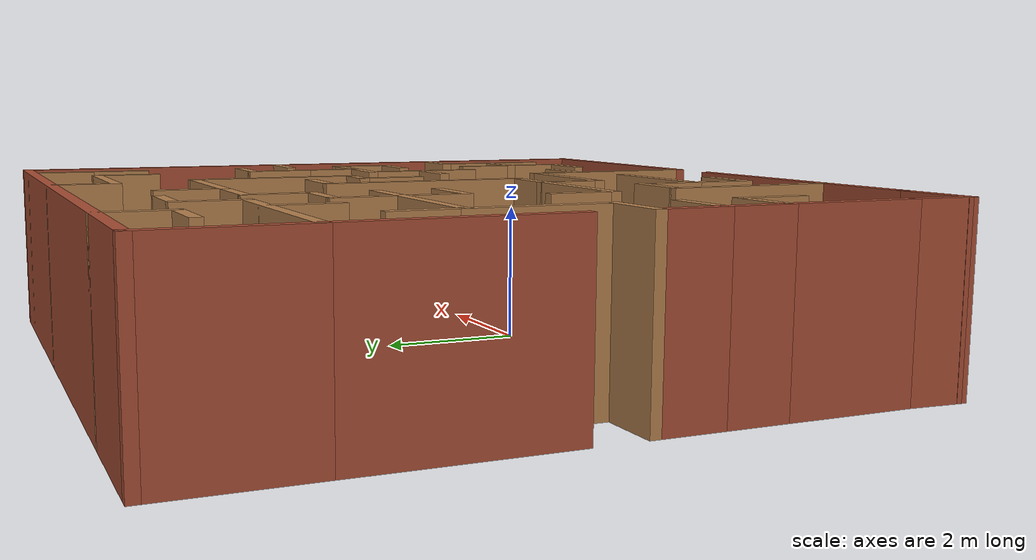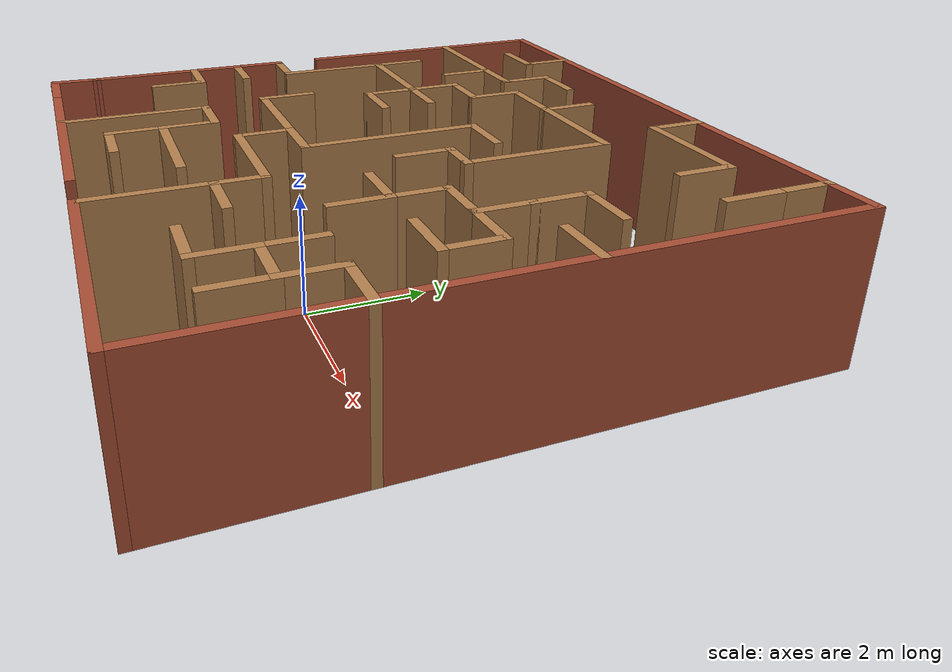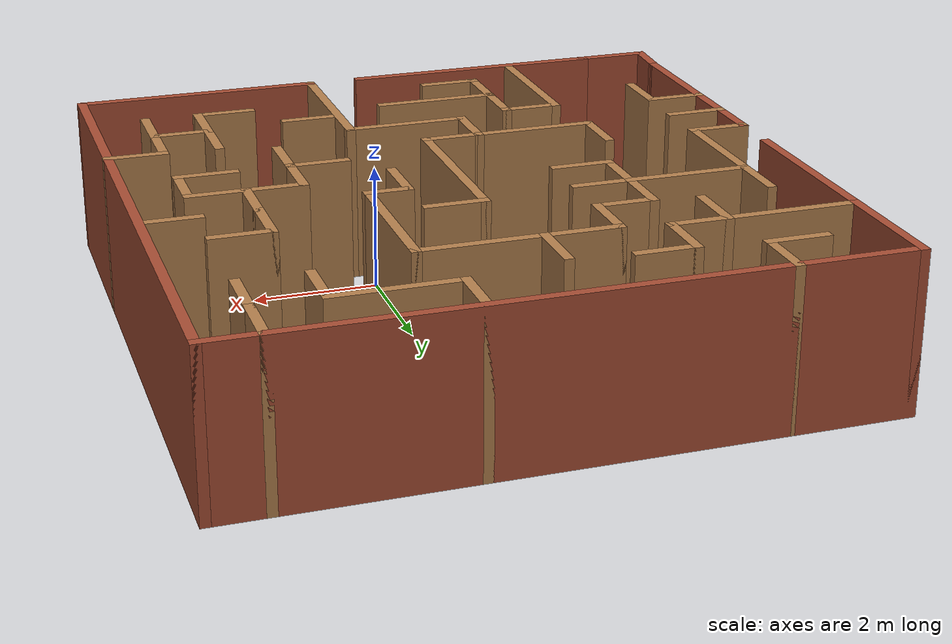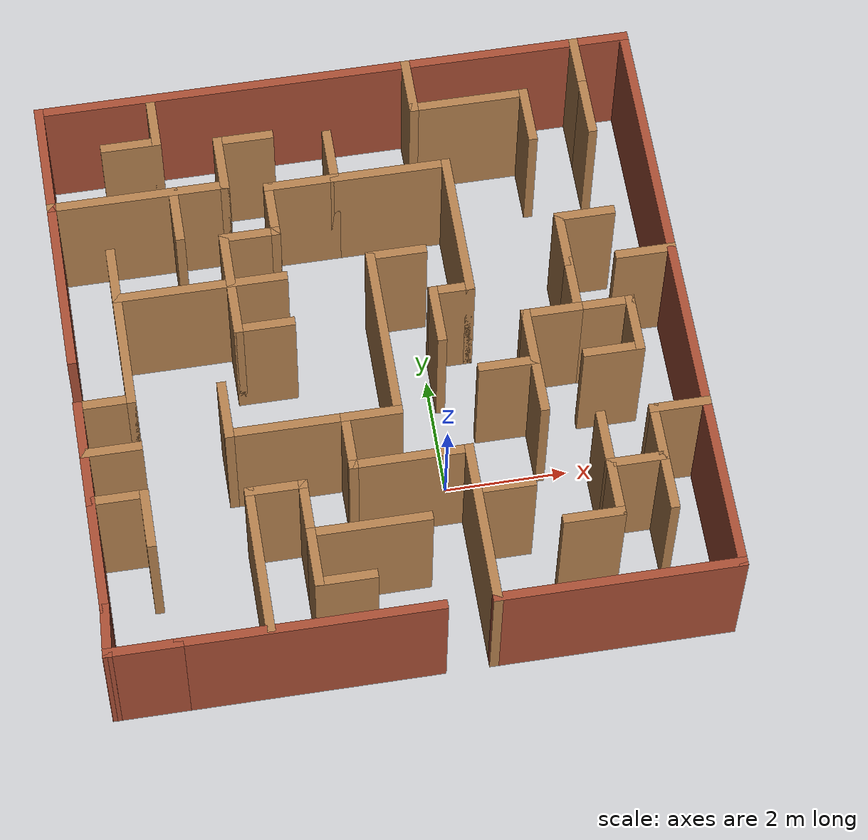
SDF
<?xml version='1.0'?>
<sdf version='1.6'>
  <model name='maze_2'>
    <pose frame=''>-0.861124 1.77194 0 0 -0 0</pose>
    <link name='Wall_10'>
      <collision name='Wall_10_Collision'>
        <geometry>
          <box>
            <size>2 0.15 2.5</size>
          </box>
        </geometry>
        <pose frame=''>0 0 1.25 0 -0 0</pose>
      </collision>
      <visual name='Wall_10_Visual'>
        <pose frame=''>0 0 1.25 0 -0 0</pose>
        <geometry>
          <box>
            <size>2 0.15 2.5</size>
          </box>
        </geometry>
        <material>
          <script>
            <uri>file://media/materials/scripts/gazebo.material</uri>
            <name>Gazebo/Wood</name>
          </script>
          <ambient>1 1 1 1</ambient>
        </material>
        <meta>
          <layer>0</layer>
        </meta>
      </visual>
      <pose frame=''>0.177411 -2.32259 0 0 -0 3.14159</pose>
    </link>
    <link name='Wall_101'>
      <collision name='Wall_101_Collision'>
        <geometry>
          <box>
            <size>1 0.15 2.5</size>
          </box>
        </geometry>
        <pose frame=''>0 0 1.25 0 -0 0</pose>
      </collision>
      <visual name='Wall_101_Visual'>
        <pose frame=''>0 0 1.25 0 -0 0</pose>
        <geometry>
          <box>
            <size>1 0.15 2.5</size>
          </box>
        </geometry>
        <material>
          <script>
            <uri>file://media/materials/scripts/gazebo.material</uri>
            <name>Gazebo/Bricks</name>
          </script>
          <ambient>1 1 1 1</ambient>
        </material>
        <meta>
          <layer>0</layer>
        </meta>
      </visual>
      <pose frame=''>-4.89759 -1.89759 0 0 -0 -1.5708</pose>
    </link>
    <link name='Wall_102'>
      <collision name='Wall_102_Collision'>
        <geometry>
          <box>
            <size>1 0.15 2.5</size>
          </box>
        </geometry>
        <pose frame=''>0 0 1.25 0 -0 0</pose>
      </collision>
      <visual name='Wall_102_Visual'>
        <pose frame=''>0 0 1.25 0 -0 0</pose>
        <geometry>
          <box>
            <size>1 0.15 2.5</size>
          </box>
        </geometry>
        <material>
          <script>
            <uri>file://media/materials/scripts/gazebo.material</uri>
            <name>Gazebo/Wood</name>
          </script>
          <ambient>1 1 1 1</ambient>
        </material>
        <meta>
          <layer>0</layer>
        </meta>
      </visual>
      <pose frame=''>-4.47259 -2.32259 0 0 -0 0</pose>
    </link>
    <link name='Wall_103'>
      <collision name='Wall_103_Collision'>
        <geometry>
          <box>
            <size>1 0.15 2.5</size>
          </box>
        </geometry>
        <pose frame=''>0 0 1.25 0 -0 0</pose>
      </collision>
      <visual name='Wall_103_Visual'>
        <pose frame=''>0 0 1.25 0 -0 0</pose>
        <geometry>
          <box>
            <size>1 0.15 2.5</size>
          </box>
        </geometry>
        <material>
          <script>
            <uri>file://media/materials/scripts/gazebo.material</uri>
            <name>Gazebo/Wood</name>
          </script>
          <ambient>1 1 1 1</ambient>
        </material>
        <meta>
          <layer>0</layer>
        </meta>
      </visual>
      <pose frame=''>-4.04759 -2.74759 0 0 -0 -1.5708</pose>
    </link>
    <link name='Wall_105'>
      <collision name='Wall_105_Collision'>
        <geometry>
          <box>
            <size>2 0.15 2.5</size>
          </box>
        </geometry>
        <pose frame=''>0 0 1.25 0 -0 0</pose>
      </collision>
      <visual name='Wall_105_Visual'>
        <pose frame=''>0 0 1.25 0 -0 0</pose>
        <geometry>
          <box>
            <size>2 0.15 2.5</size>
          </box>
        </geometry>
        <material>
          <script>
            <uri>file://media/materials/scripts/gazebo.material</uri>
            <name>Gazebo/Bricks</name>
          </script>
          <ambient>1 1 1 1</ambient>
        </material>
        <meta>
          <layer>0</layer>
        </meta>
      </visual>
      <pose frame=''>-4.89759 -3.24759 0 0 -0 -1.5708</pose>
    </link>
    <link name='Wall_11'>
      <collision name='Wall_11_Collision'>
        <geometry>
          <box>
            <size>1 0.15 2.5</size>
          </box>
        </geometry>
        <pose frame=''>0 0 1.25 0 -0 0</pose>
      </collision>
      <visual name='Wall_11_Visual'>
        <pose frame=''>0 0 1.25 0 -0 0</pose>
        <geometry>
          <box>
            <size>1 0.15 2.5</size>
          </box>
        </geometry>
        <material>
          <script>
            <uri>file://media/materials/scripts/gazebo.material</uri>
            <name>Gazebo/Wood</name>
          </script>
          <ambient>1 1 1 1</ambient>
        </material>
        <meta>
          <layer>0</layer>
        </meta>
      </visual>
      <pose frame=''>-0.747589 -1.89759 0 0 -0 1.5708</pose>
    </link>
    <link name='Wall_114'>
      <collision name='Wall_114_Collision'>
        <geometry>
          <box>
            <size>4.25 0.15 2.5</size>
          </box>
        </geometry>
        <pose frame=''>0 0 1.25 0 -0 0</pose>
      </collision>
      <visual name='Wall_114_Visual'>
        <pose frame=''>0 0 1.25 0 -0 0</pose>
        <geometry>
          <box>
            <size>4.25 0.15 2.5</size>
          </box>
        </geometry>
        <material>
          <script>
            <uri>file://media/materials/scripts/gazebo.material</uri>
            <name>Gazebo/Bricks</name>
          </script>
          <ambient>1 1 1 1</ambient>
        </material>
        <meta>
          <layer>0</layer>
        </meta>
      </visual>
      <pose frame=''>-1.79759 -4.92259 0 0 -0 3.14159</pose>
    </link>
    <link name='Wall_119'>
      <collision name='Wall_119_Collision'>
        <geometry>
          <box>
            <size>1.25 0.15 2.5</size>
          </box>
        </geometry>
        <pose frame=''>0 0 1.25 0 -0 0</pose>
      </collision>
      <visual name='Wall_119_Visual'>
        <pose frame=''>0 0 1.25 0 -0 0</pose>
        <geometry>
          <box>
            <size>1.25 0.15 2.5</size>
          </box>
        </geometry>
        <material>
          <script>
            <uri>file://media/materials/scripts/gazebo.material</uri>
            <name>Gazebo/Bricks</name>
          </script>
          <ambient>1 1 1 1</ambient>
        </material>
        <meta>
          <layer>0</layer>
        </meta>
      </visual>
      <pose frame=''>-4.39759 -4.92259 0 0 -0 3.14159</pose>
    </link>
    <link name='Wall_12'>
      <collision name='Wall_12_Collision'>
        <geometry>
          <box>
            <size>1 0.15 2.5</size>
          </box>
        </geometry>
        <pose frame=''>0 0 1.25 0 -0 0</pose>
      </collision>
      <visual name='Wall_12_Visual'>
        <pose frame=''>0 0 1.25 0 -0 0</pose>
        <geometry>
          <box>
            <size>1 0.15 2.5</size>
          </box>
        </geometry>
        <material>
          <script>
            <uri>file://media/materials/scripts/gazebo.material</uri>
            <name>Gazebo/Wood</name>
          </script>
          <ambient>1 1 1 1</ambient>
        </material>
        <meta>
          <layer>0</layer>
        </meta>
      </visual>
      <pose frame=''>-0.322589 -1.47259 0 0 -0 0</pose>
    </link>
    <link name='Wall_121'>
      <collision name='Wall_121_Collision'>
        <geometry>
          <box>
            <size>0.901665 0.15 2.5</size>
          </box>
        </geometry>
        <pose frame=''>0 0 1.25 0 -0 0</pose>
      </collision>
      <visual name='Wall_121_Visual'>
        <pose frame=''>0 0 1.25 0 -0 0</pose>
        <geometry>
          <box>
            <size>0.901665 0.15 2.5</size>
          </box>
        </geometry>
        <material>
          <script>
            <uri>file://media/materials/scripts/gazebo.material</uri>
            <name>Gazebo/Bricks</name>
          </script>
          <ambient>1 1 1 1</ambient>
        </material>
        <meta>
          <layer>0</layer>
        </meta>
      </visual>
      <pose frame=''>-4.92259 -4.54759 0 0 -0 -1.63736</pose>
    </link>
    <link name='Wall_13'>
      <collision name='Wall_13_Collision'>
        <geometry>
          <box>
            <size>3 0.15 2.5</size>
          </box>
        </geometry>
        <pose frame=''>0 0 1.25 0 -0 0</pose>
      </collision>
      <visual name='Wall_13_Visual'>
        <pose frame=''>0 0 1.25 0 -0 0</pose>
        <geometry>
          <box>
            <size>3 0.15 2.5</size>
          </box>
        </geometry>
        <material>
          <script>
            <uri>file://media/materials/scripts/gazebo.material</uri>
            <name>Gazebo/Wood</name>
          </script>
          <ambient>1 1 1 1</ambient>
        </material>
        <meta>
          <layer>0</layer>
        </meta>
      </visual>
      <pose frame=''>0.102411 -0.047589 0 0 -0 1.5708</pose>
    </link>
    <link name='Wall_14'>
      <collision name='Wall_14_Collision'>
        <geometry>
          <box>
            <size>1 0.15 2.5</size>
          </box>
        </geometry>
        <pose frame=''>0 0 1.25 0 -0 0</pose>
      </collision>
      <visual name='Wall_14_Visual'>
        <pose frame=''>0 0 1.25 0 -0 0</pose>
        <geometry>
          <box>
            <size>1 0.15 2.5</size>
          </box>
        </geometry>
        <material>
          <script>
            <uri>file://media/materials/scripts/gazebo.material</uri>
            <name>Gazebo/Wood</name>
          </script>
          <ambient>1 1 1 1</ambient>
        </material>
        <meta>
          <layer>0</layer>
        </meta>
      </visual>
      <pose frame=''>0.527411 1.37741 0 0 -0 0</pose>
    </link>
    <link name='Wall_16'>
      <collision name='Wall_16_Collision'>
        <geometry>
          <box>
            <size>2 0.15 2.5</size>
          </box>
        </geometry>
        <pose frame=''>0 0 1.25 0 -0 0</pose>
      </collision>
      <visual name='Wall_16_Visual'>
        <pose frame=''>0 0 1.25 0 -0 0</pose>
        <geometry>
          <box>
            <size>2 0.15 2.5</size>
          </box>
        </geometry>
        <material>
          <script>
            <uri>file://media/materials/scripts/gazebo.material</uri>
            <name>Gazebo/Wood</name>
          </script>
          <ambient>1 1 1 1</ambient>
        </material>
        <meta>
          <layer>0</layer>
        </meta>
      </visual>
      <pose frame=''>-1.67259 -1.47259 0 0 -0 3.14159</pose>
    </link>
    <link name='Wall_17'>
      <collision name='Wall_17_Collision'>
        <geometry>
          <box>
            <size>1 0.15 2.5</size>
          </box>
        </geometry>
        <pose frame=''>0 0 1.25 0 -0 0</pose>
      </collision>
      <visual name='Wall_17_Visual'>
        <pose frame=''>0 0 1.25 0 -0 0</pose>
        <geometry>
          <box>
            <size>1 0.15 2.5</size>
          </box>
        </geometry>
        <material>
          <script>
            <uri>file://media/materials/scripts/gazebo.material</uri>
            <name>Gazebo/Wood</name>
          </script>
          <ambient>1 1 1 1</ambient>
        </material>
        <meta>
          <layer>0</layer>
        </meta>
      </visual>
      <pose frame=''>-2.59759 -1.04759 0 0 -0 1.5708</pose>
    </link>
    <link name='Wall_192'>
      <collision name='Wall_192_Collision'>
        <geometry>
          <box>
            <size>2.5 0.15 2.5</size>
          </box>
        </geometry>
        <pose frame=''>0 0 1.25 0 -0 0</pose>
      </collision>
      <visual name='Wall_192_Visual'>
        <pose frame=''>0 0 1.25 0 -0 0</pose>
        <geometry>
          <box>
            <size>2.5 0.15 2.5</size>
          </box>
        </geometry>
        <material>
          <script>
            <uri>file://media/materials/scripts/gazebo.material</uri>
            <name>Gazebo/Wood</name>
          </script>
          <ambient>1 1 1 1</ambient>
        </material>
        <meta>
          <layer>0</layer>
        </meta>
      </visual>
      <pose frame=''>-2.42673 -3.71326 0 0 -0 1.5708</pose>
    </link>
    <link name='Wall_193'>
      <collision name='Wall_193_Collision'>
        <geometry>
          <box>
            <size>1 0.15 2.5</size>
          </box>
        </geometry>
        <pose frame=''>0 0 1.25 0 -0 0</pose>
      </collision>
      <visual name='Wall_193_Visual'>
        <pose frame=''>0 0 1.25 0 -0 0</pose>
        <geometry>
          <box>
            <size>1 0.15 2.5</size>
          </box>
        </geometry>
        <material>
          <script>
            <uri>file://media/materials/scripts/gazebo.material</uri>
            <name>Gazebo/Wood</name>
          </script>
          <ambient>1 1 1 1</ambient>
        </material>
        <meta>
          <layer>0</layer>
        </meta>
      </visual>
      <pose frame=''>-2.00173 -2.53826 0 0 -0 0</pose>
    </link>
    <link name='Wall_194'>
      <collision name='Wall_194_Collision'>
        <geometry>
          <box>
            <size>1 0.15 2.5</size>
          </box>
        </geometry>
        <pose frame=''>0 0 1.25 0 -0 0</pose>
      </collision>
      <visual name='Wall_194_Visual'>
        <pose frame=''>0 0 1.25 0 -0 0</pose>
        <geometry>
          <box>
            <size>1 0.15 2.5</size>
          </box>
        </geometry>
        <material>
          <script>
            <uri>file://media/materials/scripts/gazebo.material</uri>
            <name>Gazebo/Wood</name>
          </script>
          <ambient>1 1 1 1</ambient>
        </material>
        <meta>
          <layer>0</layer>
        </meta>
      </visual>
      <pose frame=''>-1.57673 -2.96326 0 0 -0 -1.5708</pose>
    </link>
    <link name='Wall_195'>
      <collision name='Wall_195_Collision'>
        <geometry>
          <box>
            <size>2 0.15 2.5</size>
          </box>
        </geometry>
        <pose frame=''>0 0 1.25 0 -0 0</pose>
      </collision>
      <visual name='Wall_195_Visual'>
        <pose frame=''>0 0 1.25 0 -0 0</pose>
        <geometry>
          <box>
            <size>2 0.15 2.5</size>
          </box>
        </geometry>
        <material>
          <script>
            <uri>file://media/materials/scripts/gazebo.material</uri>
            <name>Gazebo/Wood</name>
          </script>
          <ambient>1 1 1 1</ambient>
        </material>
        <meta>
          <layer>0</layer>
        </meta>
      </visual>
      <pose frame=''>-0.651728 -3.38826 0 0 -0 0</pose>
    </link>
    <link name='Wall_197'>
      <collision name='Wall_197_Collision'>
        <geometry>
          <box>
            <size>1 0.15 2.5</size>
          </box>
        </geometry>
        <pose frame=''>0 0 1.25 0 -0 0</pose>
      </collision>
      <visual name='Wall_197_Visual'>
        <pose frame=''>0 0 1.25 0 -0 0</pose>
        <geometry>
          <box>
            <size>1 0.15 2.5</size>
          </box>
        </geometry>
        <material>
          <script>
            <uri>file://media/materials/scripts/gazebo.material</uri>
            <name>Gazebo/Wood</name>
          </script>
          <ambient>1 1 1 1</ambient>
        </material>
        <meta>
          <layer>0</layer>
        </meta>
      </visual>
      <pose frame=''>-1.57673 -3.81326 0 0 -0 -1.5708</pose>
    </link>
    <link name='Wall_198'>
      <collision name='Wall_198_Collision'>
        <geometry>
          <box>
            <size>1 0.15 2.5</size>
          </box>
        </geometry>
        <pose frame=''>0 0 1.25 0 -0 0</pose>
      </collision>
      <visual name='Wall_198_Visual'>
        <pose frame=''>0 0 1.25 0 -0 0</pose>
        <geometry>
          <box>
            <size>1 0.15 2.5</size>
          </box>
        </geometry>
        <material>
          <script>
            <uri>file://media/materials/scripts/gazebo.material</uri>
            <name>Gazebo/Wood</name>
          </script>
          <ambient>1 1 1 1</ambient>
        </material>
        <meta>
          <layer>0</layer>
        </meta>
      </visual>
      <pose frame=''>-1.15173 -4.23826 0 0 -0 0</pose>
    </link>
    <link name='Wall_20'>
      <collision name='Wall_20_Collision'>
        <geometry>
          <box>
            <size>1 0.15 2.5</size>
          </box>
        </geometry>
        <pose frame=''>0 0 1.25 0 -0 0</pose>
      </collision>
      <visual name='Wall_20_Visual'>
        <pose frame=''>0 0 1.25 0 -0 0</pose>
        <geometry>
          <box>
            <size>1 0.15 2.5</size>
          </box>
        </geometry>
        <material>
          <script>
            <uri>file://media/materials/scripts/gazebo.material</uri>
            <name>Gazebo/Wood</name>
          </script>
          <ambient>1 1 1 1</ambient>
        </material>
        <meta>
          <layer>0</layer>
        </meta>
      </visual>
      <pose frame=''>1.54191 -3.05359 0 0 -0 0</pose>
    </link>
    <link name='Wall_23'>
      <collision name='Wall_23_Collision'>
        <geometry>
          <box>
            <size>1 0.15 2.5</size>
          </box>
        </geometry>
        <pose frame=''>0 0 1.25 0 -0 0</pose>
      </collision>
      <visual name='Wall_23_Visual'>
        <pose frame=''>0 0 1.25 0 -0 0</pose>
        <geometry>
          <box>
            <size>1 0.15 2.5</size>
          </box>
        </geometry>
        <material>
          <script>
            <uri>file://media/materials/scripts/gazebo.material</uri>
            <name>Gazebo/Wood</name>
          </script>
          <ambient>1 1 1 1</ambient>
        </material>
        <meta>
          <layer>0</layer>
        </meta>
      </visual>
      <pose frame=''>4.52741 -2.07259 0 0 -0 3.14159</pose>
    </link>
    <link name='Wall_24'>
      <collision name='Wall_24_Collision'>
        <geometry>
          <box>
            <size>1 0.15 2.5</size>
          </box>
        </geometry>
        <pose frame=''>0 0 1.25 0 -0 0</pose>
      </collision>
      <visual name='Wall_24_Visual'>
        <pose frame=''>0 0 1.25 0 -0 0</pose>
        <geometry>
          <box>
            <size>1 0.15 2.5</size>
          </box>
        </geometry>
        <material>
          <script>
            <uri>file://media/materials/scripts/gazebo.material</uri>
            <name>Gazebo/Wood</name>
          </script>
          <ambient>1 1 1 1</ambient>
        </material>
        <meta>
          <layer>0</layer>
        </meta>
      </visual>
      <pose frame=''>4.10241 -2.49759 0 0 -0 -1.5708</pose>
    </link>
    <link name='Wall_25'>
      <collision name='Wall_25_Collision'>
        <geometry>
          <box>
            <size>1 0.15 2.5</size>
          </box>
        </geometry>
        <pose frame=''>0 0 1.25 0 -0 0</pose>
      </collision>
      <visual name='Wall_25_Visual'>
        <pose frame=''>0 0 1.25 0 -0 0</pose>
        <geometry>
          <box>
            <size>1 0.15 2.5</size>
          </box>
        </geometry>
        <material>
          <script>
            <uri>file://media/materials/scripts/gazebo.material</uri>
            <name>Gazebo/Wood</name>
          </script>
          <ambient>1 1 1 1</ambient>
        </material>
        <meta>
          <layer>0</layer>
        </meta>
      </visual>
      <pose frame=''>3.67741 -2.92259 0 0 -0 3.14159</pose>
    </link>
    <link name='Wall_26'>
      <collision name='Wall_26_Collision'>
        <geometry>
          <box>
            <size>1 0.15 2.5</size>
          </box>
        </geometry>
        <pose frame=''>0 0 1.25 0 -0 0</pose>
      </collision>
      <visual name='Wall_26_Visual'>
        <pose frame=''>0 0 1.25 0 -0 0</pose>
        <geometry>
          <box>
            <size>1 0.15 2.5</size>
          </box>
        </geometry>
        <material>
          <script>
            <uri>file://media/materials/scripts/gazebo.material</uri>
            <name>Gazebo/Wood</name>
          </script>
          <ambient>1 1 1 1</ambient>
        </material>
        <meta>
          <layer>0</layer>
        </meta>
      </visual>
      <pose frame=''>3.25241 -3.34759 0 0 -0 -1.5708</pose>
    </link>
    <link name='Wall_27'>
      <collision name='Wall_27_Collision'>
        <geometry>
          <box>
            <size>1 0.15 2.5</size>
          </box>
        </geometry>
        <pose frame=''>0 0 1.25 0 -0 0</pose>
      </collision>
      <visual name='Wall_27_Visual'>
        <pose frame=''>0 0 1.25 0 -0 0</pose>
        <geometry>
          <box>
            <size>1 0.15 2.5</size>
          </box>
        </geometry>
        <material>
          <script>
            <uri>file://media/materials/scripts/gazebo.material</uri>
            <name>Gazebo/Wood</name>
          </script>
          <ambient>1 1 1 1</ambient>
        </material>
        <meta>
          <layer>0</layer>
        </meta>
      </visual>
      <pose frame=''>2.82741 -3.77259 0 0 -0 3.14159</pose>
    </link>
    <link name='Wall_29'>
      <collision name='Wall_29_Collision'>
        <geometry>
          <box>
            <size>1 0.15 2.5</size>
          </box>
        </geometry>
        <pose frame=''>0 0 1.25 0 -0 0</pose>
      </collision>
      <visual name='Wall_29_Visual'>
        <pose frame=''>0 0 1.25 0 -0 0</pose>
        <geometry>
          <box>
            <size>1 0.15 2.5</size>
          </box>
        </geometry>
        <material>
          <script>
            <uri>file://media/materials/scripts/gazebo.material</uri>
            <name>Gazebo/Wood</name>
          </script>
          <ambient>1 1 1 1</ambient>
        </material>
        <meta>
          <layer>0</layer>
        </meta>
      </visual>
      <pose frame=''>4.10241 -3.34759 0 0 -0 -1.5708</pose>
    </link>
    <link name='Wall_31'>
      <collision name='Wall_31_Collision'>
        <geometry>
          <box>
            <size>1 0.15 2.5</size>
          </box>
        </geometry>
        <pose frame=''>0 0 1.25 0 -0 0</pose>
      </collision>
      <visual name='Wall_31_Visual'>
        <pose frame=''>0 0 1.25 0 -0 0</pose>
        <geometry>
          <box>
            <size>1 0.15 2.5</size>
          </box>
        </geometry>
        <material>
          <script>
            <uri>file://media/materials/scripts/gazebo.material</uri>
            <name>Gazebo/Wood</name>
          </script>
          <ambient>1 1 1 1</ambient>
        </material>
        <meta>
          <layer>0</layer>
        </meta>
      </visual>
      <pose frame=''>3.25241 -2.49759 0 0 -0 1.5708</pose>
    </link>
    <link name='Wall_34'>
      <collision name='Wall_34_Collision'>
        <geometry>
          <box>
            <size>1 0.15 2.5</size>
          </box>
        </geometry>
        <pose frame=''>0 0 1.25 0 -0 0</pose>
      </collision>
      <visual name='Wall_34_Visual'>
        <pose frame=''>0 0 1.25 0 -0 0</pose>
        <geometry>
          <box>
            <size>1 0.15 2.5</size>
          </box>
        </geometry>
        <material>
          <script>
            <uri>file://media/materials/scripts/gazebo.material</uri>
            <name>Gazebo/Wood</name>
          </script>
          <ambient>1 1 1 1</ambient>
        </material>
        <meta>
          <layer>0</layer>
        </meta>
      </visual>
      <pose frame=''>4.52741 0.777411 0 0 -0 3.14159</pose>
    </link>
    <link name='Wall_36'>
      <collision name='Wall_36_Collision'>
        <geometry>
          <box>
            <size>1 0.15 2.5</size>
          </box>
        </geometry>
        <pose frame=''>0 0 1.25 0 -0 0</pose>
      </collision>
      <visual name='Wall_36_Visual'>
        <pose frame=''>0 0 1.25 0 -0 0</pose>
        <geometry>
          <box>
            <size>1 0.15 2.5</size>
          </box>
        </geometry>
        <material>
          <script>
            <uri>file://media/materials/scripts/gazebo.material</uri>
            <name>Gazebo/Wood</name>
          </script>
          <ambient>1 1 1 1</ambient>
        </material>
        <meta>
          <layer>0</layer>
        </meta>
      </visual>
      <pose frame=''>3.25241 1.20241 0 0 -0 1.5708</pose>
    </link>
    <link name='Wall_37'>
      <collision name='Wall_37_Collision'>
        <geometry>
          <box>
            <size>1 0.15 2.5</size>
          </box>
        </geometry>
        <pose frame=''>0 0 1.25 0 -0 0</pose>
      </collision>
      <visual name='Wall_37_Visual'>
        <pose frame=''>0 0 1.25 0 -0 0</pose>
        <geometry>
          <box>
            <size>1 0.15 2.5</size>
          </box>
        </geometry>
        <material>
          <script>
            <uri>file://media/materials/scripts/gazebo.material</uri>
            <name>Gazebo/Wood</name>
          </script>
          <ambient>1 1 1 1</ambient>
        </material>
        <meta>
          <layer>0</layer>
        </meta>
      </visual>
      <pose frame=''>3.67741 1.62741 0 0 -0 0</pose>
    </link>
    <link name='Wall_39'>
      <collision name='Wall_39_Collision'>
        <geometry>
          <box>
            <size>1 0.15 2.5</size>
          </box>
        </geometry>
        <pose frame=''>0 0 1.25 0 -0 0</pose>
      </collision>
      <visual name='Wall_39_Visual'>
        <pose frame=''>0 0 1.25 0 -0 0</pose>
        <geometry>
          <box>
            <size>1 0.15 2.5</size>
          </box>
        </geometry>
        <material>
          <script>
            <uri>file://media/materials/scripts/gazebo.material</uri>
            <name>Gazebo/Wood</name>
          </script>
          <ambient>1 1 1 1</ambient>
        </material>
        <meta>
          <layer>0</layer>
        </meta>
      </visual>
      <pose frame=''>3.25241 0.352411 0 0 -0 -1.5708</pose>
    </link>
    <link name='Wall_40'>
      <collision name='Wall_40_Collision'>
        <geometry>
          <box>
            <size>1 0.15 2.5</size>
          </box>
        </geometry>
        <pose frame=''>0 0 1.25 0 -0 0</pose>
      </collision>
      <visual name='Wall_40_Visual'>
        <pose frame=''>0 0 1.25 0 -0 0</pose>
        <geometry>
          <box>
            <size>1 0.15 2.5</size>
          </box>
        </geometry>
        <material>
          <script>
            <uri>file://media/materials/scripts/gazebo.material</uri>
            <name>Gazebo/Wood</name>
          </script>
          <ambient>1 1 1 1</ambient>
        </material>
        <meta>
          <layer>0</layer>
        </meta>
      </visual>
      <pose frame=''>2.82741 -0.072589 0 0 -0 3.14159</pose>
    </link>
    <link name='Wall_41'>
      <collision name='Wall_41_Collision'>
        <geometry>
          <box>
            <size>1 0.15 2.5</size>
          </box>
        </geometry>
        <pose frame=''>0 0 1.25 0 -0 0</pose>
      </collision>
      <visual name='Wall_41_Visual'>
        <pose frame=''>0 0 1.25 0 -0 0</pose>
        <geometry>
          <box>
            <size>1 0.15 2.5</size>
          </box>
        </geometry>
        <material>
          <script>
            <uri>file://media/materials/scripts/gazebo.material</uri>
            <name>Gazebo/Wood</name>
          </script>
          <ambient>1 1 1 1</ambient>
        </material>
        <meta>
          <layer>0</layer>
        </meta>
      </visual>
      <pose frame=''>2.40241 -0.497589 0 0 -0 -1.5708</pose>
    </link>
    <link name='Wall_42'>
      <collision name='Wall_42_Collision'>
        <geometry>
          <box>
            <size>1 0.15 2.5</size>
          </box>
        </geometry>
        <pose frame=''>0 0 1.25 0 -0 0</pose>
      </collision>
      <visual name='Wall_42_Visual'>
        <pose frame=''>0 0 1.25 0 -0 0</pose>
        <geometry>
          <box>
            <size>1 0.15 2.5</size>
          </box>
        </geometry>
        <material>
          <script>
            <uri>file://media/materials/scripts/gazebo.material</uri>
            <name>Gazebo/Wood</name>
          </script>
          <ambient>1 1 1 1</ambient>
        </material>
        <meta>
          <layer>0</layer>
        </meta>
      </visual>
      <pose frame=''>1.97741 -0.922589 0 0 -0 3.14159</pose>
    </link>
    <link name='Wall_44'>
      <collision name='Wall_44_Collision'>
        <geometry>
          <box>
            <size>1 0.15 2.5</size>
          </box>
        </geometry>
        <pose frame=''>0 0 1.25 0 -0 0</pose>
      </collision>
      <visual name='Wall_44_Visual'>
        <pose frame=''>0 0 1.25 0 -0 0</pose>
        <geometry>
          <box>
            <size>1 0.15 2.5</size>
          </box>
        </geometry>
        <material>
          <script>
            <uri>file://media/materials/scripts/gazebo.material</uri>
            <name>Gazebo/Wood</name>
          </script>
          <ambient>1 1 1 1</ambient>
        </material>
        <meta>
          <layer>0</layer>
        </meta>
      </visual>
      <pose frame=''>2.40241 -1.34759 0 0 -0 -1.5708</pose>
    </link>
    <link name='Wall_46'>
      <collision name='Wall_46_Collision'>
        <geometry>
          <box>
            <size>1 0.15 2.5</size>
          </box>
        </geometry>
        <pose frame=''>0 0 1.25 0 -0 0</pose>
      </collision>
      <visual name='Wall_46_Visual'>
        <pose frame=''>0 0 1.25 0 -0 0</pose>
        <geometry>
          <box>
            <size>1 0.15 2.5</size>
          </box>
        </geometry>
        <material>
          <script>
            <uri>file://media/materials/scripts/gazebo.material</uri>
            <name>Gazebo/Wood</name>
          </script>
          <ambient>1 1 1 1</ambient>
        </material>
        <meta>
          <layer>0</layer>
        </meta>
      </visual>
      <pose frame=''>3.67741 -0.072589 0 0 -0 0</pose>
    </link>
    <link name='Wall_47'>
      <collision name='Wall_47_Collision'>
        <geometry>
          <box>
            <size>1 0.15 2.5</size>
          </box>
        </geometry>
        <pose frame=''>0 0 1.25 0 -0 0</pose>
      </collision>
      <visual name='Wall_47_Visual'>
        <pose frame=''>0 0 1.25 0 -0 0</pose>
        <geometry>
          <box>
            <size>1 0.15 2.5</size>
          </box>
        </geometry>
        <material>
          <script>
            <uri>file://media/materials/scripts/gazebo.material</uri>
            <name>Gazebo/Wood</name>
          </script>
          <ambient>1 1 1 1</ambient>
        </material>
        <meta>
          <layer>0</layer>
        </meta>
      </visual>
      <pose frame=''>4.10241 -0.497589 0 0 -0 -1.5708</pose>
    </link>
    <link name='Wall_48'>
      <collision name='Wall_48_Collision'>
        <geometry>
          <box>
            <size>1 0.15 2.5</size>
          </box>
        </geometry>
        <pose frame=''>0 0 1.25 0 -0 0</pose>
      </collision>
      <visual name='Wall_48_Visual'>
        <pose frame=''>0 0 1.25 0 -0 0</pose>
        <geometry>
          <box>
            <size>1 0.15 2.5</size>
          </box>
        </geometry>
        <material>
          <script>
            <uri>file://media/materials/scripts/gazebo.material</uri>
            <name>Gazebo/Wood</name>
          </script>
          <ambient>1 1 1 1</ambient>
        </material>
        <meta>
          <layer>0</layer>
        </meta>
      </visual>
      <pose frame=''>3.67741 -0.922589 0 0 -0 3.14159</pose>
    </link>
    <link name='Wall_5'>
      <collision name='Wall_5_Collision'>
        <geometry>
          <box>
            <size>10 0.15 2.5</size>
          </box>
        </geometry>
        <pose frame=''>0 0 1.25 0 -0 0</pose>
      </collision>
      <visual name='Wall_5_Visual'>
        <pose frame=''>0 0 1.25 0 -0 0</pose>
        <geometry>
          <box>
            <size>10 0.15 2.5</size>
          </box>
        </geometry>
        <material>
          <script>
            <uri>file://media/materials/scripts/gazebo.material</uri>
            <name>Gazebo/Bricks</name>
          </script>
          <ambient>1 1 1 1</ambient>
        </material>
        <meta>
          <layer>0</layer>
        </meta>
      </visual>
      <pose frame=''>0.027411 4.92741 0 0 -0 0</pose>
    </link>
    <link name='Wall_51'>
      <collision name='Wall_51_Collision'>
        <geometry>
          <box>
            <size>1 0.15 2.5</size>
          </box>
        </geometry>
        <pose frame=''>0 0 1.25 0 -0 0</pose>
      </collision>
      <visual name='Wall_51_Visual'>
        <pose frame=''>0 0 1.25 0 -0 0</pose>
        <geometry>
          <box>
            <size>1 0.15 2.5</size>
          </box>
        </geometry>
        <material>
          <script>
            <uri>file://media/materials/scripts/gazebo.material</uri>
            <name>Gazebo/Wood</name>
          </script>
          <ambient>1 1 1 1</ambient>
        </material>
        <meta>
          <layer>0</layer>
        </meta>
      </visual>
      <pose frame=''>4.10241 4.50241 0 0 -0 -1.5708</pose>
    </link>
    <link name='Wall_54'>
      <collision name='Wall_54_Collision'>
        <geometry>
          <box>
            <size>1 0.15 2.5</size>
          </box>
        </geometry>
        <pose frame=''>0 0 1.25 0 -0 0</pose>
      </collision>
      <visual name='Wall_54_Visual'>
        <pose frame=''>0 0 1.25 0 -0 0</pose>
        <geometry>
          <box>
            <size>1 0.15 2.5</size>
          </box>
        </geometry>
        <material>
          <script>
            <uri>file://media/materials/scripts/gazebo.material</uri>
            <name>Gazebo/Wood</name>
          </script>
          <ambient>1 1 1 1</ambient>
        </material>
        <meta>
          <layer>0</layer>
        </meta>
      </visual>
      <pose frame=''>1.25241 4.50241 0 0 -0 -1.5708</pose>
    </link>
    <link name='Wall_55'>
      <collision name='Wall_55_Collision'>
        <geometry>
          <box>
            <size>2 0.15 2.5</size>
          </box>
        </geometry>
        <pose frame=''>0 0 1.25 0 -0 0</pose>
      </collision>
      <visual name='Wall_55_Visual'>
        <pose frame=''>0 0 1.25 0 -0 0</pose>
        <geometry>
          <box>
            <size>2 0.15 2.5</size>
          </box>
        </geometry>
        <material>
          <script>
            <uri>file://media/materials/scripts/gazebo.material</uri>
            <name>Gazebo/Wood</name>
          </script>
          <ambient>1 1 1 1</ambient>
        </material>
        <meta>
          <layer>0</layer>
        </meta>
      </visual>
      <pose frame=''>2.17741 4.07741 0 0 -0 0</pose>
    </link>
    <link name='Wall_56'>
      <collision name='Wall_56_Collision'>
        <geometry>
          <box>
            <size>1 0.15 2.5</size>
          </box>
        </geometry>
        <pose frame=''>0 0 1.25 0 -0 0</pose>
      </collision>
      <visual name='Wall_56_Visual'>
        <pose frame=''>0 0 1.25 0 -0 0</pose>
        <geometry>
          <box>
            <size>1 0.15 2.5</size>
          </box>
        </geometry>
        <material>
          <script>
            <uri>file://media/materials/scripts/gazebo.material</uri>
            <name>Gazebo/Wood</name>
          </script>
          <ambient>1 1 1 1</ambient>
        </material>
        <meta>
          <layer>0</layer>
        </meta>
      </visual>
      <pose frame=''>3.10241 3.65241 0 0 -0 -1.5708</pose>
    </link>
    <link name='Wall_58'>
      <collision name='Wall_58_Collision'>
        <geometry>
          <box>
            <size>1 0.15 2.5</size>
          </box>
        </geometry>
        <pose frame=''>0 0 1.25 0 -0 0</pose>
      </collision>
      <visual name='Wall_58_Visual'>
        <pose frame=''>0 0 1.25 0 -0 0</pose>
        <geometry>
          <box>
            <size>1 0.15 2.5</size>
          </box>
        </geometry>
        <material>
          <script>
            <uri>file://media/materials/scripts/gazebo.material</uri>
            <name>Gazebo/Wood</name>
          </script>
          <ambient>1 1 1 1</ambient>
        </material>
        <meta>
          <layer>0</layer>
        </meta>
      </visual>
      <pose frame=''>4.10241 3.65241 0 0 -0 -1.5708</pose>
    </link>
    <link name='Wall_61'>
      <collision name='Wall_61_Collision'>
        <geometry>
          <box>
            <size>1 0.15 2.5</size>
          </box>
        </geometry>
        <pose frame=''>0 0 1.25 0 -0 0</pose>
      </collision>
      <visual name='Wall_61_Visual'>
        <pose frame=''>0 0 1.25 0 -0 0</pose>
        <geometry>
          <box>
            <size>1 0.15 2.5</size>
          </box>
        </geometry>
        <material>
          <script>
            <uri>file://media/materials/scripts/gazebo.material</uri>
            <name>Gazebo/Wood</name>
          </script>
          <ambient>1 1 1 1</ambient>
        </material>
        <meta>
          <layer>0</layer>
        </meta>
      </visual>
      <pose frame=''>-3.04759 4.50241 0 0 -0 -1.5708</pose>
    </link>
    <link name='Wall_62'>
      <collision name='Wall_62_Collision'>
        <geometry>
          <box>
            <size>1 0.15 2.5</size>
          </box>
        </geometry>
        <pose frame=''>0 0 1.25 0 -0 0</pose>
      </collision>
      <visual name='Wall_62_Visual'>
        <pose frame=''>0 0 1.25 0 -0 0</pose>
        <geometry>
          <box>
            <size>1 0.15 2.5</size>
          </box>
        </geometry>
        <material>
          <script>
            <uri>file://media/materials/scripts/gazebo.material</uri>
            <name>Gazebo/Wood</name>
          </script>
          <ambient>1 1 1 1</ambient>
        </material>
        <meta>
          <layer>0</layer>
        </meta>
      </visual>
      <pose frame=''>-3.47259 4.07741 0 0 -0 3.14159</pose>
    </link>
    <link name='Wall_64'>
      <collision name='Wall_64_Collision'>
        <geometry>
          <box>
            <size>2 0.15 2.5</size>
          </box>
        </geometry>
        <pose frame=''>0 0 1.25 0 -0 0</pose>
      </collision>
      <visual name='Wall_64_Visual'>
        <pose frame=''>0 0 1.25 0 -0 0</pose>
        <geometry>
          <box>
            <size>2 0.15 2.5</size>
          </box>
        </geometry>
        <material>
          <script>
            <uri>file://media/materials/scripts/gazebo.material</uri>
            <name>Gazebo/Bricks</name>
          </script>
          <ambient>1 1 1 1</ambient>
        </material>
        <meta>
          <layer>0</layer>
        </meta>
      </visual>
      <pose frame=''>-4.89759 4.00241 0 0 -0 -1.5708</pose>
    </link>
    <link name='Wall_65'>
      <collision name='Wall_65_Collision'>
        <geometry>
          <box>
            <size>3 0.15 2.5</size>
          </box>
        </geometry>
        <pose frame=''>0 0 1.25 0 -0 0</pose>
      </collision>
      <visual name='Wall_65_Visual'>
        <pose frame=''>0 0 1.25 0 -0 0</pose>
        <geometry>
          <box>
            <size>3 0.15 2.5</size>
          </box>
        </geometry>
        <material>
          <script>
            <uri>file://media/materials/scripts/gazebo.material</uri>
            <name>Gazebo/Wood</name>
          </script>
          <ambient>1 1 1 1</ambient>
        </material>
        <meta>
          <layer>0</layer>
        </meta>
      </visual>
      <pose frame=''>-3.47259 3.07741 0 0 -0 0</pose>
    </link>
    <link name='Wall_66'>
      <collision name='Wall_66_Collision'>
        <geometry>
          <box>
            <size>1 0.15 2.5</size>
          </box>
        </geometry>
        <pose frame=''>0 0 1.25 0 -0 0</pose>
      </collision>
      <visual name='Wall_66_Visual'>
        <pose frame=''>0 0 1.25 0 -0 0</pose>
        <geometry>
          <box>
            <size>1 0.15 2.5</size>
          </box>
        </geometry>
        <material>
          <script>
            <uri>file://media/materials/scripts/gazebo.material</uri>
            <name>Gazebo/Wood</name>
          </script>
          <ambient>1 1 1 1</ambient>
        </material>
        <meta>
          <layer>0</layer>
        </meta>
      </visual>
      <pose frame=''>-2.04759 3.50241 0 0 -0 1.5708</pose>
    </link>
    <link name='Wall_67'>
      <collision name='Wall_67_Collision'>
        <geometry>
          <box>
            <size>1 0.15 2.5</size>
          </box>
        </geometry>
        <pose frame=''>0 0 1.25 0 -0 0</pose>
      </collision>
      <visual name='Wall_67_Visual'>
        <pose frame=''>0 0 1.25 0 -0 0</pose>
        <geometry>
          <box>
            <size>1 0.15 2.5</size>
          </box>
        </geometry>
        <material>
          <script>
            <uri>file://media/materials/scripts/gazebo.material</uri>
            <name>Gazebo/Wood</name>
          </script>
          <ambient>1 1 1 1</ambient>
        </material>
        <meta>
          <layer>0</layer>
        </meta>
      </visual>
      <pose frame=''>-1.62259 3.92741 0 0 -0 0</pose>
    </link>
    <link name='Wall_7'>
      <collision name='Wall_7_Collision'>
        <geometry>
          <box>
            <size>10 0.15 2.5</size>
          </box>
        </geometry>
        <pose frame=''>0 0 1.25 0 -0 0</pose>
      </collision>
      <visual name='Wall_7_Visual'>
        <pose frame=''>0 0 1.25 0 -0 0</pose>
        <geometry>
          <box>
            <size>10 0.15 2.5</size>
          </box>
        </geometry>
        <material>
          <script>
            <uri>file://media/materials/scripts/gazebo.material</uri>
            <name>Gazebo/Bricks</name>
          </script>
          <ambient>1 1 1 1</ambient>
        </material>
        <meta>
          <layer>0</layer>
        </meta>
      </visual>
      <pose frame=''>4.95241 0.002411 0 0 -0 -1.5708</pose>
    </link>
    <link name='Wall_70'>
      <collision name='Wall_70_Collision'>
        <geometry>
          <box>
            <size>1 0.15 2.5</size>
          </box>
        </geometry>
        <pose frame=''>0 0 1.25 0 -0 0</pose>
      </collision>
      <visual name='Wall_70_Visual'>
        <pose frame=''>0 0 1.25 0 -0 0</pose>
        <geometry>
          <box>
            <size>1 0.15 2.5</size>
          </box>
        </geometry>
        <material>
          <script>
            <uri>file://media/materials/scripts/gazebo.material</uri>
            <name>Gazebo/Wood</name>
          </script>
          <ambient>1 1 1 1</ambient>
        </material>
        <meta>
          <layer>0</layer>
        </meta>
      </visual>
      <pose frame=''>-2.89759 2.65241 0 0 -0 -1.5708</pose>
    </link>
    <link name='Wall_74'>
      <collision name='Wall_74_Collision'>
        <geometry>
          <box>
            <size>3 0.15 2.5</size>
          </box>
        </geometry>
        <pose frame=''>0 0 1.25 0 -0 0</pose>
      </collision>
      <visual name='Wall_74_Visual'>
        <pose frame=''>0 0 1.25 0 -0 0</pose>
        <geometry>
          <box>
            <size>3 0.15 2.5</size>
          </box>
        </geometry>
        <material>
          <script>
            <uri>file://media/materials/scripts/gazebo.material</uri>
            <name>Gazebo/Bricks</name>
          </script>
          <ambient>1 1 1 1</ambient>
        </material>
        <meta>
          <layer>0</layer>
        </meta>
      </visual>
      <pose frame=''>-4.89759 1.65241 0 0 -0 -1.5708</pose>
    </link>
    <link name='Wall_77'>
      <collision name='Wall_77_Collision'>
        <geometry>
          <box>
            <size>1 0.15 2.5</size>
          </box>
        </geometry>
        <pose frame=''>0 0 1.25 0 -0 0</pose>
      </collision>
      <visual name='Wall_77_Visual'>
        <pose frame=''>0 0 1.25 0 -0 0</pose>
        <geometry>
          <box>
            <size>1 0.15 2.5</size>
          </box>
        </geometry>
        <material>
          <script>
            <uri>file://media/materials/scripts/gazebo.material</uri>
            <name>Gazebo/Wood</name>
          </script>
          <ambient>1 1 1 1</ambient>
        </material>
        <meta>
          <layer>0</layer>
        </meta>
      </visual>
      <pose frame=''>-4.47259 -0.622589 0 0 -0 0</pose>
    </link>
    <link name='Wall_78'>
      <collision name='Wall_78_Collision'>
        <geometry>
          <box>
            <size>2 0.15 2.5</size>
          </box>
        </geometry>
        <pose frame=''>0 0 1.25 0 -0 0</pose>
      </collision>
      <visual name='Wall_78_Visual'>
        <pose frame=''>0 0 1.25 0 -0 0</pose>
        <geometry>
          <box>
            <size>2 0.15 2.5</size>
          </box>
        </geometry>
        <material>
          <script>
            <uri>file://media/materials/scripts/gazebo.material</uri>
            <name>Gazebo/Wood</name>
          </script>
          <ambient>1 1 1 1</ambient>
        </material>
        <meta>
          <layer>0</layer>
        </meta>
      </visual>
      <pose frame=''>-4.04759 0.302411 0 0 -0 1.5708</pose>
    </link>
    <link name='Wall_79'>
      <collision name='Wall_79_Collision'>
        <geometry>
          <box>
            <size>2 0.15 2.5</size>
          </box>
        </geometry>
        <pose frame=''>0 0 1.25 0 -0 0</pose>
      </collision>
      <visual name='Wall_79_Visual'>
        <pose frame=''>0 0 1.25 0 -0 0</pose>
        <geometry>
          <box>
            <size>2 0.15 2.5</size>
          </box>
        </geometry>
        <material>
          <script>
            <uri>file://media/materials/scripts/gazebo.material</uri>
            <name>Gazebo/Wood</name>
          </script>
          <ambient>1 1 1 1</ambient>
        </material>
        <meta>
          <layer>0</layer>
        </meta>
      </visual>
      <pose frame=''>-3.12259 1.22741 0 0 -0 0</pose>
    </link>
    <link name='Wall_8'>
      <collision name='Wall_8_Collision'>
        <geometry>
          <box>
            <size>4 0.15 2.5</size>
          </box>
        </geometry>
        <pose frame=''>0 0 1.25 0 -0 0</pose>
      </collision>
      <visual name='Wall_8_Visual'>
        <pose frame=''>0 0 1.25 0 -0 0</pose>
        <geometry>
          <box>
            <size>4 0.15 2.5</size>
          </box>
        </geometry>
        <material>
          <script>
            <uri>file://media/materials/scripts/gazebo.material</uri>
            <name>Gazebo/Bricks</name>
          </script>
          <ambient>1 1 1 1</ambient>
        </material>
        <meta>
          <layer>0</layer>
        </meta>
      </visual>
      <pose frame=''>3.02741 -4.92259 0 0 -0 3.14159</pose>
    </link>
    <link name='Wall_80'>
      <collision name='Wall_80_Collision'>
        <geometry>
          <box>
            <size>1 0.15 2.5</size>
          </box>
        </geometry>
        <pose frame=''>0 0 1.25 0 -0 0</pose>
      </collision>
      <visual name='Wall_80_Visual'>
        <pose frame=''>0 0 1.25 0 -0 0</pose>
        <geometry>
          <box>
            <size>1 0.15 2.5</size>
          </box>
        </geometry>
        <material>
          <script>
            <uri>file://media/materials/scripts/gazebo.material</uri>
            <name>Gazebo/Wood</name>
          </script>
          <ambient>1 1 1 1</ambient>
        </material>
        <meta>
          <layer>0</layer>
        </meta>
      </visual>
      <pose frame=''>-2.19759 1.65241 0 0 -0 1.5708</pose>
    </link>
    <link name='Wall_81'>
      <collision name='Wall_81_Collision'>
        <geometry>
          <box>
            <size>1 0.15 2.5</size>
          </box>
        </geometry>
        <pose frame=''>0 0 1.25 0 -0 0</pose>
      </collision>
      <visual name='Wall_81_Visual'>
        <pose frame=''>0 0 1.25 0 -0 0</pose>
        <geometry>
          <box>
            <size>1 0.15 2.5</size>
          </box>
        </geometry>
        <material>
          <script>
            <uri>file://media/materials/scripts/gazebo.material</uri>
            <name>Gazebo/Wood</name>
          </script>
          <ambient>1 1 1 1</ambient>
        </material>
        <meta>
          <layer>0</layer>
        </meta>
      </visual>
      <pose frame=''>-1.77259 2.07741 0 0 -0 0</pose>
    </link>
    <link name='Wall_82'>
      <collision name='Wall_82_Collision'>
        <geometry>
          <box>
            <size>1 0.15 2.5</size>
          </box>
        </geometry>
        <pose frame=''>0 0 1.25 0 -0 0</pose>
      </collision>
      <visual name='Wall_82_Visual'>
        <pose frame=''>0 0 1.25 0 -0 0</pose>
        <geometry>
          <box>
            <size>1 0.15 2.5</size>
          </box>
        </geometry>
        <material>
          <script>
            <uri>file://media/materials/scripts/gazebo.material</uri>
            <name>Gazebo/Wood</name>
          </script>
          <ambient>1 1 1 1</ambient>
        </material>
        <meta>
          <layer>0</layer>
        </meta>
      </visual>
      <pose frame=''>-1.34759 2.50241 0 0 -0 1.5708</pose>
    </link>
    <link name='Wall_83'>
      <collision name='Wall_83_Collision'>
        <geometry>
          <box>
            <size>1.25 0.15 2.5</size>
          </box>
        </geometry>
        <pose frame=''>0 0 1.25 0 -0 0</pose>
      </collision>
      <visual name='Wall_83_Visual'>
        <pose frame=''>0 0 1.25 0 -0 0</pose>
        <geometry>
          <box>
            <size>1.25 0.15 2.5</size>
          </box>
        </geometry>
        <material>
          <script>
            <uri>file://media/materials/scripts/gazebo.material</uri>
            <name>Gazebo/Wood</name>
          </script>
          <ambient>1 1 1 1</ambient>
        </material>
        <meta>
          <layer>0</layer>
        </meta>
      </visual>
      <pose frame=''>-0.797589 2.92741 0 0 -0 0</pose>
    </link>
    <link name='Wall_84'>
      <collision name='Wall_84_Collision'>
        <geometry>
          <box>
            <size>1 0.15 2.5</size>
          </box>
        </geometry>
        <pose frame=''>0 0 1.25 0 -0 0</pose>
      </collision>
      <visual name='Wall_84_Visual'>
        <pose frame=''>0 0 1.25 0 -0 0</pose>
        <geometry>
          <box>
            <size>1 0.15 2.5</size>
          </box>
        </geometry>
        <material>
          <script>
            <uri>file://media/materials/scripts/gazebo.material</uri>
            <name>Gazebo/Wood</name>
          </script>
          <ambient>1 1 1 1</ambient>
        </material>
        <meta>
          <layer>0</layer>
        </meta>
      </visual>
      <pose frame=''>-0.247589 3.35241 0 0 -0 1.5708</pose>
    </link>
    <link name='Wall_86'>
      <collision name='Wall_86_Collision'>
        <geometry>
          <box>
            <size>1 0.15 2.5</size>
          </box>
        </geometry>
        <pose frame=''>0 0 1.25 0 -0 0</pose>
      </collision>
      <visual name='Wall_86_Visual'>
        <pose frame=''>0 0 1.25 0 -0 0</pose>
        <geometry>
          <box>
            <size>1 0.15 2.5</size>
          </box>
        </geometry>
        <material>
          <script>
            <uri>file://media/materials/scripts/gazebo.material</uri>
            <name>Gazebo/Wood</name>
          </script>
          <ambient>1 1 1 1</ambient>
        </material>
        <meta>
          <layer>0</layer>
        </meta>
      </visual>
      <pose frame=''>-4.04759 1.65241 0 0 -0 1.5708</pose>
    </link>
    <link name='Wall_89'>
      <collision name='Wall_89_Collision'>
        <geometry>
          <box>
            <size>1 0.15 2.5</size>
          </box>
        </geometry>
        <pose frame=''>0 0 1.25 0 -0 0</pose>
      </collision>
      <visual name='Wall_89_Visual'>
        <pose frame=''>0 0 1.25 0 -0 0</pose>
        <geometry>
          <box>
            <size>1 0.15 2.5</size>
          </box>
        </geometry>
        <material>
          <script>
            <uri>file://media/materials/scripts/gazebo.material</uri>
            <name>Gazebo/Wood</name>
          </script>
          <ambient>1 1 1 1</ambient>
        </material>
        <meta>
          <layer>0</layer>
        </meta>
      </visual>
      <pose frame=''>-1.77259 1.22741 0 0 -0 3.14159</pose>
    </link>
    <link name='Wall_9'>
      <collision name='Wall_9_Collision'>
        <geometry>
          <box>
            <size>2.75 0.15 2.5</size>
          </box>
        </geometry>
        <pose frame=''>0 0 1.25 0 -0 0</pose>
      </collision>
      <visual name='Wall_9_Visual'>
        <pose frame=''>0 0 1.25 0 -0 0</pose>
        <geometry>
          <box>
            <size>2.75 0.15 2.5</size>
          </box>
        </geometry>
        <material>
          <script>
            <uri>file://media/materials/scripts/gazebo.material</uri>
            <name>Gazebo/Wood</name>
          </script>
          <ambient>1 1 1 1</ambient>
        </material>
        <meta>
          <layer>0</layer>
        </meta>
      </visual>
      <pose frame=''>1.10241 -3.62259 0 0 -0 1.5708</pose>
    </link>
    <link name='Wall_90'>
      <collision name='Wall_90_Collision'>
        <geometry>
          <box>
            <size>1 0.15 2.5</size>
          </box>
        </geometry>
        <pose frame=''>0 0 1.25 0 -0 0</pose>
      </collision>
      <visual name='Wall_90_Visual'>
        <pose frame=''>0 0 1.25 0 -0 0</pose>
        <geometry>
          <box>
            <size>1 0.15 2.5</size>
          </box>
        </geometry>
        <material>
          <script>
            <uri>file://media/materials/scripts/gazebo.material</uri>
            <name>Gazebo/Wood</name>
          </script>
          <ambient>1 1 1 1</ambient>
        </material>
        <meta>
          <layer>0</layer>
        </meta>
      </visual>
      <pose frame=''>-2.19759 0.802411 0 0 -0 -1.5708</pose>
    </link>
    <link name='Wall_91'>
      <collision name='Wall_91_Collision'>
        <geometry>
          <box>
            <size>1 0.15 2.5</size>
          </box>
        </geometry>
        <pose frame=''>0 0 1.25 0 -0 0</pose>
      </collision>
      <visual name='Wall_91_Visual'>
        <pose frame=''>0 0 1.25 0 -0 0</pose>
        <geometry>
          <box>
            <size>1 0.15 2.5</size>
          </box>
        </geometry>
        <material>
          <script>
            <uri>file://media/materials/scripts/gazebo.material</uri>
            <name>Gazebo/Wood</name>
          </script>
          <ambient>1 1 1 1</ambient>
        </material>
        <meta>
          <layer>0</layer>
        </meta>
      </visual>
      <pose frame=''>-1.77259 0.377411 0 0 -0 0</pose>
    </link>
    <link name='Wall_93'>
      <collision name='Wall_93_Collision'>
        <geometry>
          <box>
            <size>2 0.15 2.5</size>
          </box>
        </geometry>
        <pose frame=''>0 0 1.25 0 -0 0</pose>
      </collision>
      <visual name='Wall_93_Visual'>
        <pose frame=''>0 0 1.25 0 -0 0</pose>
        <geometry>
          <box>
            <size>2 0.15 2.5</size>
          </box>
        </geometry>
        <material>
          <script>
            <uri>file://media/materials/scripts/gazebo.material</uri>
            <name>Gazebo/Wood</name>
          </script>
          <ambient>1 1 1 1</ambient>
        </material>
        <meta>
          <layer>0</layer>
        </meta>
      </visual>
      <pose frame=''>0.677411 2.92741 0 0 -0 0</pose>
    </link>
    <link name='Wall_94'>
      <collision name='Wall_94_Collision'>
        <geometry>
          <box>
            <size>2.5 0.15 2.5</size>
          </box>
        </geometry>
        <pose frame=''>0 0 1.25 0 -0 0</pose>
      </collision>
      <visual name='Wall_94_Visual'>
        <pose frame=''>0 0 1.25 0 -0 0</pose>
        <geometry>
          <box>
            <size>2.5 0.15 2.5</size>
          </box>
        </geometry>
        <material>
          <script>
            <uri>file://media/materials/scripts/gazebo.material</uri>
            <name>Gazebo/Wood</name>
          </script>
          <ambient>1 1 1 1</ambient>
        </material>
        <meta>
          <layer>0</layer>
        </meta>
      </visual>
      <pose frame=''>1.60241 1.75241 0 0 -0 -1.5708</pose>
    </link>
    <link name='Wall_95'>
      <collision name='Wall_95_Collision'>
        <geometry>
          <box>
            <size>0.75 0.15 2.5</size>
          </box>
        </geometry>
        <pose frame=''>0 0 1.25 0 -0 0</pose>
      </collision>
      <visual name='Wall_95_Visual'>
        <pose frame=''>0 0 1.25 0 -0 0</pose>
        <geometry>
          <box>
            <size>0.75 0.15 2.5</size>
          </box>
        </geometry>
        <material>
          <script>
            <uri>file://media/materials/scripts/gazebo.material</uri>
            <name>Gazebo/Wood</name>
          </script>
          <ambient>1 1 1 1</ambient>
        </material>
        <meta>
          <layer>0</layer>
        </meta>
      </visual>
      <pose frame=''>1.30241 0.577411 0 0 -0 3.14159</pose>
    </link>
    <link name='Wall_96'>
      <collision name='Wall_96_Collision'>
        <geometry>
          <box>
            <size>1 0.15 2.5</size>
          </box>
        </geometry>
        <pose frame=''>0 0 1.25 0 -0 0</pose>
      </collision>
      <visual name='Wall_96_Visual'>
        <pose frame=''>0 0 1.25 0 -0 0</pose>
        <geometry>
          <box>
            <size>1 0.15 2.5</size>
          </box>
        </geometry>
        <material>
          <script>
            <uri>file://media/materials/scripts/gazebo.material</uri>
            <name>Gazebo/Wood</name>
          </script>
          <ambient>1 1 1 1</ambient>
        </material>
        <meta>
          <layer>0</layer>
        </meta>
      </visual>
      <pose frame=''>1.00241 0.152411 0 0 -0 -1.5708</pose>
    </link>
    <link name='Wall_98'>
      <collision name='Wall_98_Collision'>
        <geometry>
          <box>
            <size>1 0.15 2.5</size>
          </box>
        </geometry>
        <pose frame=''>0 0 1.25 0 -0 0</pose>
      </collision>
      <visual name='Wall_98_Visual'>
        <pose frame=''>0 0 1.25 0 -0 0</pose>
        <geometry>
          <box>
            <size>1 0.15 2.5</size>
          </box>
        </geometry>
        <material>
          <script>
            <uri>file://media/materials/scripts/gazebo.material</uri>
            <name>Gazebo/Bricks</name>
          </script>
          <ambient>1 1 1 1</ambient>
        </material>
        <meta>
          <layer>0</layer>
        </meta>
      </visual>
      <pose frame=''>-4.89759 -1.04759 0 0 -0 -1.5708</pose>
    </link>
    <link name='Wall_99'>
      <collision name='Wall_99_Collision'>
        <geometry>
          <box>
            <size>1 0.15 2.5</size>
          </box>
        </geometry>
        <pose frame=''>0 0 1.25 0 -0 0</pose>
      </collision>
      <visual name='Wall_99_Visual'>
        <pose frame=''>0 0 1.25 0 -0 0</pose>
        <geometry>
          <box>
            <size>1 0.15 2.5</size>
          </box>
        </geometry>
        <material>
          <script>
            <uri>file://media/materials/scripts/gazebo.material</uri>
            <name>Gazebo/Wood</name>
          </script>
          <ambient>1 1 1 1</ambient>
        </material>
        <meta>
          <layer>0</layer>
        </meta>
      </visual>
      <pose frame=''>-4.47259 -1.47259 0 0 -0 0</pose>
    </link>
    <static>1</static>
  </model>
</sdf>
